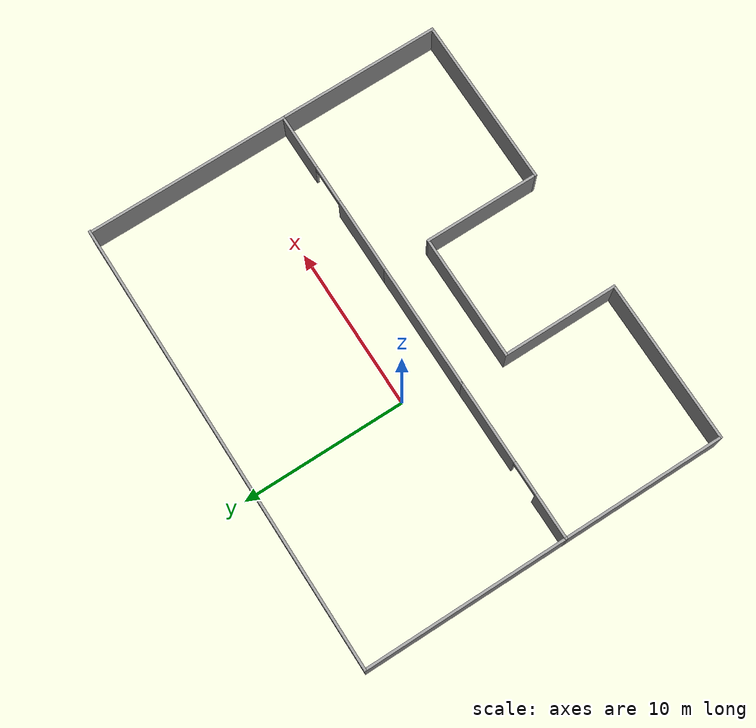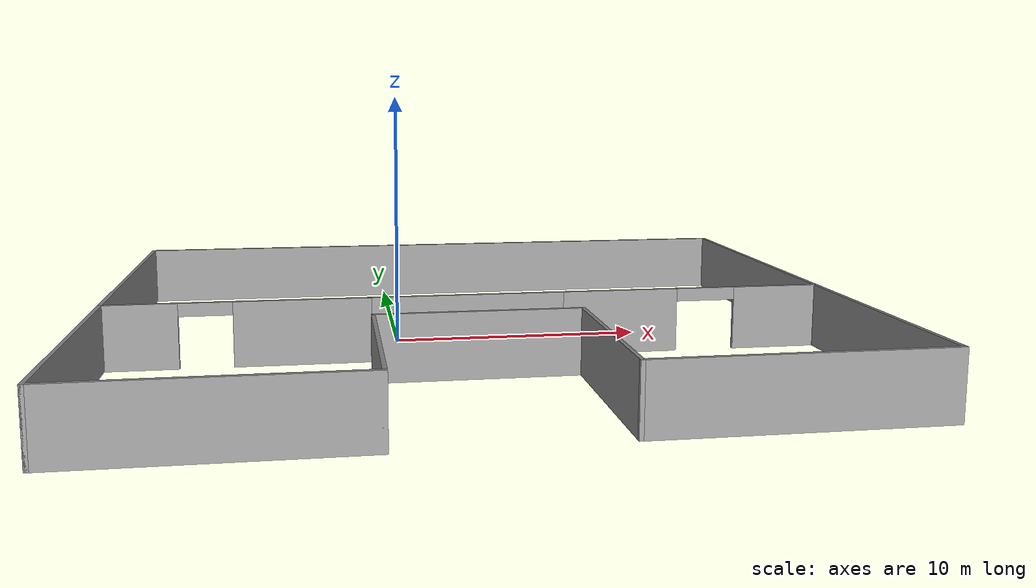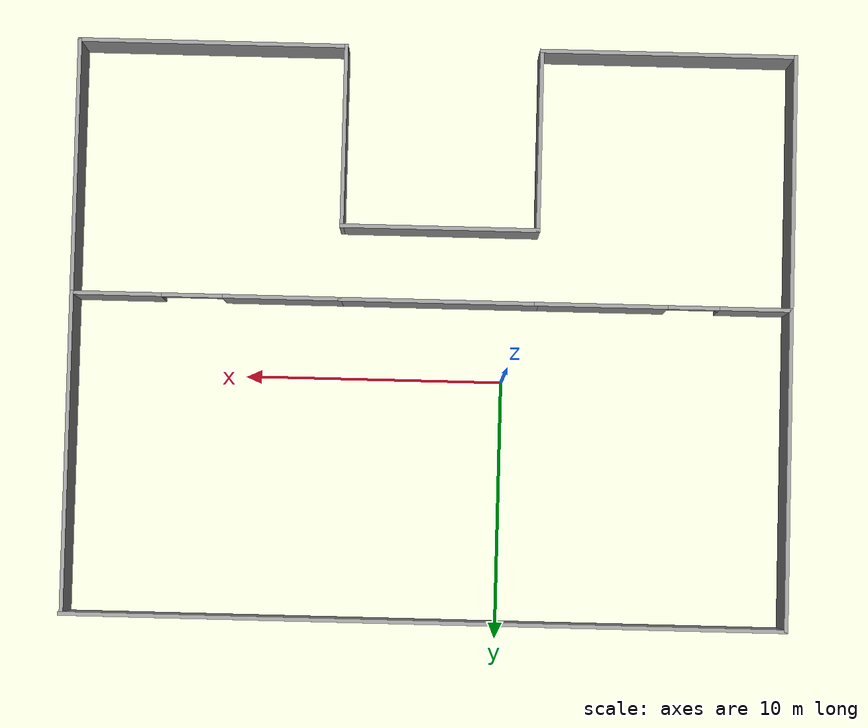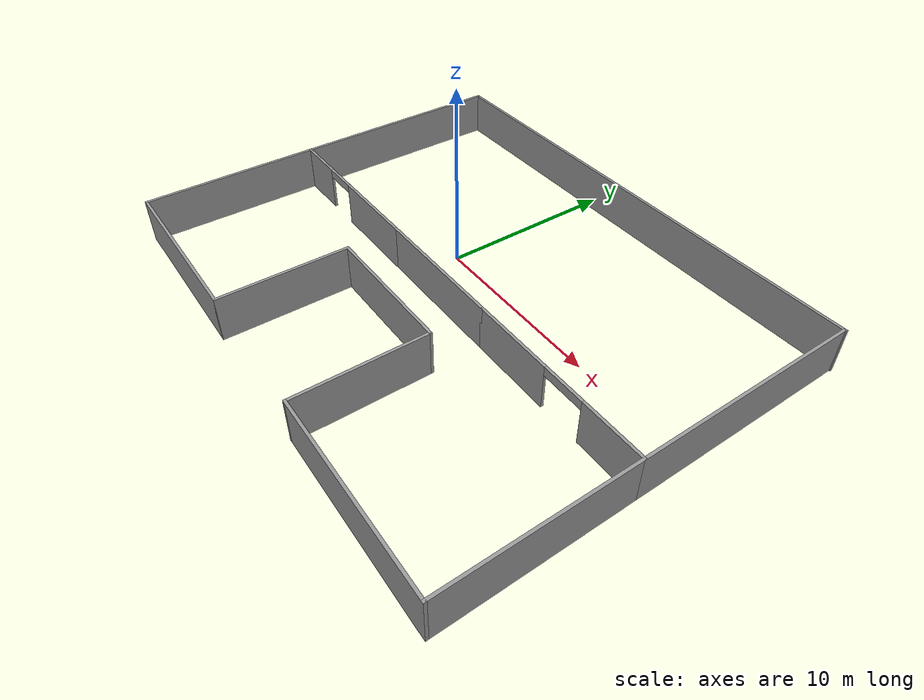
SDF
<?xml version='1.0'?>
<sdf version='1.7'>
  <model name='MyWorkShop'>
    <pose>2.82321 -1.71256 0 0 -0 0</pose>
    <link name='Wall_17'>
      <collision name='Wall_17_Collision'>
        <geometry>
          <box>
            <size>10 0.15 2.5</size>
          </box>
        </geometry>
        <pose>0 0 1.25 0 -0 0</pose>
      </collision>
      <visual name='Wall_17_Visual'>
        <pose>0 0 1.25 0 -0 0</pose>
        <geometry>
          <box>
            <size>10 0.15 2.5</size>
          </box>
        </geometry>
        <material>
          <script>
            <uri>file://media/materials/scripts/gazebo.material</uri>
            <name>Gazebo/Grey</name>
          </script>
          <ambient>1 1 1 1</ambient>
        </material>
        <meta>
          <layer>0</layer>
        </meta>
      </visual>
      <pose>-13.925 -6.175 0 0 -0 -1.5708</pose>
    </link>
    <link name='Wall_18'>
      <collision name='Wall_18_Collision'>
        <geometry>
          <box>
            <size>10 0.15 2.5</size>
          </box>
        </geometry>
        <pose>0 0 1.25 0 -0 0</pose>
      </collision>
      <visual name='Wall_18_Visual'>
        <pose>0 0 1.25 0 -0 0</pose>
        <geometry>
          <box>
            <size>10 0.15 2.5</size>
          </box>
        </geometry>
        <material>
          <script>
            <uri>file://media/materials/scripts/gazebo.material</uri>
            <name>Gazebo/Grey</name>
          </script>
          <ambient>1 1 1 1</ambient>
        </material>
        <meta>
          <layer>0</layer>
        </meta>
      </visual>
      <pose>-9 -11.1 0 0 -0 0</pose>
    </link>
    <link name='Wall_20'>
      <pose>-9 -1.25 0 0 -0 3.14159</pose>
      <visual name='Wall_20_Visual_0'>
        <pose>-2.42107 0 1.25 0 -0 0</pose>
        <geometry>
          <box>
            <size>5.15787 0.15 2.5</size>
          </box>
        </geometry>
        <material>
          <script>
            <uri>file://media/materials/scripts/gazebo.material</uri>
            <name>Gazebo/Grey</name>
          </script>
          <ambient>1 1 1 1</ambient>
        </material>
        <meta>
          <layer>0</layer>
        </meta>
      </visual>
      <collision name='Wall_20_Collision_0'>
        <geometry>
          <box>
            <size>5.15787 0.15 2.5</size>
          </box>
        </geometry>
        <pose>-2.42107 0 1.25 0 -0 0</pose>
      </collision>
      <visual name='Wall_20_Visual_1'>
        <pose>3.57561 0 1.25 0 -0 0</pose>
        <geometry>
          <box>
            <size>2.84877 0.15 2.5</size>
          </box>
        </geometry>
        <material>
          <script>
            <uri>file://media/materials/scripts/gazebo.material</uri>
            <name>Gazebo/Grey</name>
          </script>
          <ambient>1 1 1 1</ambient>
        </material>
        <meta>
          <layer>0</layer>
        </meta>
      </visual>
      <collision name='Wall_20_Collision_1'>
        <geometry>
          <box>
            <size>2.84877 0.15 2.5</size>
          </box>
        </geometry>
        <pose>3.57561 0 1.25 0 -0 0</pose>
      </collision>
      <visual name='Wall_20_Visual_2'>
        <pose>1.15455 0 2.25 0 -0 0</pose>
        <geometry>
          <box>
            <size>1.99336 0.15 0.5</size>
          </box>
        </geometry>
        <material>
          <script>
            <uri>file://media/materials/scripts/gazebo.material</uri>
            <name>Gazebo/Grey</name>
          </script>
          <ambient>1 1 1 1</ambient>
        </material>
        <meta>
          <layer>0</layer>
        </meta>
      </visual>
      <collision name='Wall_20_Collision_2'>
        <geometry>
          <box>
            <size>1.99336 0.15 0.5</size>
          </box>
        </geometry>
        <pose>1.15455 0 2.25 0 -0 0</pose>
      </collision>
    </link>
    <link name='Wall_30'>
      <collision name='Wall_30_Collision'>
        <geometry>
          <box>
            <size>7.75 0.15 2.5</size>
          </box>
        </geometry>
        <pose>0 0 1.25 0 -0 0</pose>
      </collision>
      <visual name='Wall_30_Visual'>
        <pose>0 0 1.25 0 -0 0</pose>
        <geometry>
          <box>
            <size>7.75 0.15 2.5</size>
          </box>
        </geometry>
        <material>
          <script>
            <uri>file://media/materials/scripts/gazebo.material</uri>
            <name>Gazebo/Grey</name>
          </script>
          <ambient>1 1 1 1</ambient>
        </material>
        <meta>
          <layer>0</layer>
        </meta>
      </visual>
      <pose>-0.274999 -1.25 0 0 -0 0</pose>
    </link>
    <link name='Wall_32'>
      <collision name='Wall_32_Collision'>
        <geometry>
          <box>
            <size>7.75 0.15 2.5</size>
          </box>
        </geometry>
        <pose>0 0 1.25 0 -0 0</pose>
      </collision>
      <visual name='Wall_32_Visual'>
        <pose>0 0 1.25 0 -0 0</pose>
        <geometry>
          <box>
            <size>7.75 0.15 2.5</size>
          </box>
        </geometry>
        <material>
          <script>
            <uri>file://media/materials/scripts/gazebo.material</uri>
            <name>Gazebo/Grey</name>
          </script>
          <ambient>1 1 1 1</ambient>
        </material>
        <meta>
          <layer>0</layer>
        </meta>
      </visual>
      <pose>-0.274999 -4.1 0 0 -0 3.14159</pose>
    </link>
    <link name='Wall_34'>
      <pose>8.7 -1.25 0 0 -0 0</pose>
      <visual name='Wall_34_Visual_0'>
        <pose>-2.951 0 1.25 0 -0 0</pose>
        <geometry>
          <box>
            <size>4.598 0.15 2.5</size>
          </box>
        </geometry>
        <material>
          <script>
            <uri>file://media/materials/scripts/gazebo.material</uri>
            <name>Gazebo/Grey</name>
          </script>
          <ambient>1 1 1 1</ambient>
        </material>
        <meta>
          <layer>0</layer>
        </meta>
      </visual>
      <collision name='Wall_34_Collision_0'>
        <geometry>
          <box>
            <size>4.598 0.15 2.5</size>
          </box>
        </geometry>
        <pose>-2.951 0 1.25 0 -0 0</pose>
      </collision>
      <visual name='Wall_34_Visual_1'>
        <pose>3.48037 0 1.25 0 -0 0</pose>
        <geometry>
          <box>
            <size>3.53925 0.15 2.5</size>
          </box>
        </geometry>
        <material>
          <script>
            <uri>file://media/materials/scripts/gazebo.material</uri>
            <name>Gazebo/Grey</name>
          </script>
          <ambient>1 1 1 1</ambient>
        </material>
        <meta>
          <layer>0</layer>
        </meta>
      </visual>
      <collision name='Wall_34_Collision_1'>
        <geometry>
          <box>
            <size>3.53925 0.15 2.5</size>
          </box>
        </geometry>
        <pose>3.48037 0 1.25 0 -0 0</pose>
      </collision>
      <visual name='Wall_34_Visual_2'>
        <pose>0.529375 0 2.25 0 -0 0</pose>
        <geometry>
          <box>
            <size>2.36275 0.15 0.5</size>
          </box>
        </geometry>
        <material>
          <script>
            <uri>file://media/materials/scripts/gazebo.material</uri>
            <name>Gazebo/Grey</name>
          </script>
          <ambient>1 1 1 1</ambient>
        </material>
        <meta>
          <layer>0</layer>
        </meta>
      </visual>
      <collision name='Wall_34_Collision_2'>
        <geometry>
          <box>
            <size>2.36275 0.15 0.5</size>
          </box>
        </geometry>
        <pose>0.529375 0 2.25 0 -0 0</pose>
      </collision>
    </link>
    <link name='Wall_35'>
      <collision name='Wall_35_Collision'>
        <geometry>
          <box>
            <size>10 0.15 2.5</size>
          </box>
        </geometry>
        <pose>0 0 1.25 0 -0 0</pose>
      </collision>
      <visual name='Wall_35_Visual'>
        <pose>0 0 1.25 0 -0 0</pose>
        <geometry>
          <box>
            <size>10 0.15 2.5</size>
          </box>
        </geometry>
        <material>
          <script>
            <uri>file://media/materials/scripts/gazebo.material</uri>
            <name>Gazebo/Grey</name>
          </script>
          <ambient>1 1 1 1</ambient>
        </material>
        <meta>
          <layer>0</layer>
        </meta>
      </visual>
      <pose>13.875 -6.175 0 0 -0 -1.5708</pose>
    </link>
    <link name='Wall_36'>
      <collision name='Wall_36_Collision'>
        <geometry>
          <box>
            <size>10.5 0.15 2.5</size>
          </box>
        </geometry>
        <pose>0 0 1.25 0 -0 0</pose>
      </collision>
      <visual name='Wall_36_Visual'>
        <pose>0 0 1.25 0 -0 0</pose>
        <geometry>
          <box>
            <size>10.5 0.15 2.5</size>
          </box>
        </geometry>
        <material>
          <script>
            <uri>file://media/materials/scripts/gazebo.material</uri>
            <name>Gazebo/Grey</name>
          </script>
          <ambient>1 1 1 1</ambient>
        </material>
        <meta>
          <layer>0</layer>
        </meta>
      </visual>
      <pose>8.7 -11.1 0 0 -0 3.14159</pose>
    </link>
    <link name='Wall_37'>
      <collision name='Wall_37_Collision'>
        <geometry>
          <box>
            <size>7.15 0.15 2.5</size>
          </box>
        </geometry>
        <pose>0 0 1.25 0 -0 0</pose>
      </collision>
      <visual name='Wall_37_Visual'>
        <pose>0 0 1.25 0 -0 0</pose>
        <geometry>
          <box>
            <size>7.15 0.15 2.5</size>
          </box>
        </geometry>
        <material>
          <script>
            <uri>file://media/materials/scripts/gazebo.material</uri>
            <name>Gazebo/Grey</name>
          </script>
          <ambient>1 1 1 1</ambient>
        </material>
        <meta>
          <layer>0</layer>
        </meta>
      </visual>
      <pose>3.525 -7.6 0 0 -0 1.5708</pose>
    </link>
    <link name='Wall_46'>
      <collision name='Wall_46_Collision'>
        <geometry>
          <box>
            <size>12.5 0.15 2.5</size>
          </box>
        </geometry>
        <pose>0 0 1.25 0 -0 0</pose>
      </collision>
      <visual name='Wall_46_Visual'>
        <pose>0 0 1.25 0 -0 0</pose>
        <geometry>
          <box>
            <size>12.5 0.15 2.5</size>
          </box>
        </geometry>
        <material>
          <script>
            <uri>file://media/materials/scripts/gazebo.material</uri>
            <name>Gazebo/Grey</name>
          </script>
          <ambient>1 1 1 1</ambient>
        </material>
        <meta>
          <layer>0</layer>
        </meta>
      </visual>
      <pose>-13.925 4.925 0 0 -0 1.5708</pose>
    </link>
    <link name='Wall_50'>
      <collision name='Wall_50_Collision'>
        <geometry>
          <box>
            <size>12.5 0.15 2.5</size>
          </box>
        </geometry>
        <pose>0 0 1.25 0 -0 0</pose>
      </collision>
      <visual name='Wall_50_Visual'>
        <pose>0 0 1.25 0 -0 0</pose>
        <geometry>
          <box>
            <size>12.5 0.15 2.5</size>
          </box>
        </geometry>
        <material>
          <script>
            <uri>file://media/materials/scripts/gazebo.material</uri>
            <name>Gazebo/Grey</name>
          </script>
          <ambient>1 1 1 1</ambient>
        </material>
        <meta>
          <layer>0</layer>
        </meta>
      </visual>
      <pose>13.875 4.925 0 0 -0 1.5708</pose>
    </link>
    <link name='Wall_52'>
      <collision name='Wall_52_Collision'>
        <geometry>
          <box>
            <size>28 0.15 2.5</size>
          </box>
        </geometry>
        <pose>0 0 1.25 0 -0 0</pose>
      </collision>
      <visual name='Wall_52_Visual'>
        <pose>0 0 1.25 0 -0 0</pose>
        <geometry>
          <box>
            <size>28 0.15 2.5</size>
          </box>
        </geometry>
        <material>
          <script>
            <uri>file://media/materials/scripts/gazebo.material</uri>
            <name>Gazebo/Grey</name>
          </script>
          <ambient>1 1 1 1</ambient>
        </material>
        <meta>
          <layer>0</layer>
        </meta>
      </visual>
      <pose>1e-06 11.1 0 0 -0 0</pose>
    </link>
    <link name='Wall_54'>
      <collision name='Wall_54_Collision'>
        <geometry>
          <box>
            <size>7.15 0.15 2.5</size>
          </box>
        </geometry>
        <pose>0 0 1.25 0 -0 0</pose>
      </collision>
      <visual name='Wall_54_Visual'>
        <pose>0 0 1.25 0 -0 0</pose>
        <geometry>
          <box>
            <size>7.15 0.15 2.5</size>
          </box>
        </geometry>
        <material>
          <script>
            <uri>file://media/materials/scripts/gazebo.material</uri>
            <name>Gazebo/Grey</name>
          </script>
          <ambient>1 1 1 1</ambient>
        </material>
        <meta>
          <layer>0</layer>
        </meta>
      </visual>
      <pose>-4.075 -7.6 0 0 -0 1.5708</pose>
    </link>
    <static>1</static>
  </model>
</sdf>
